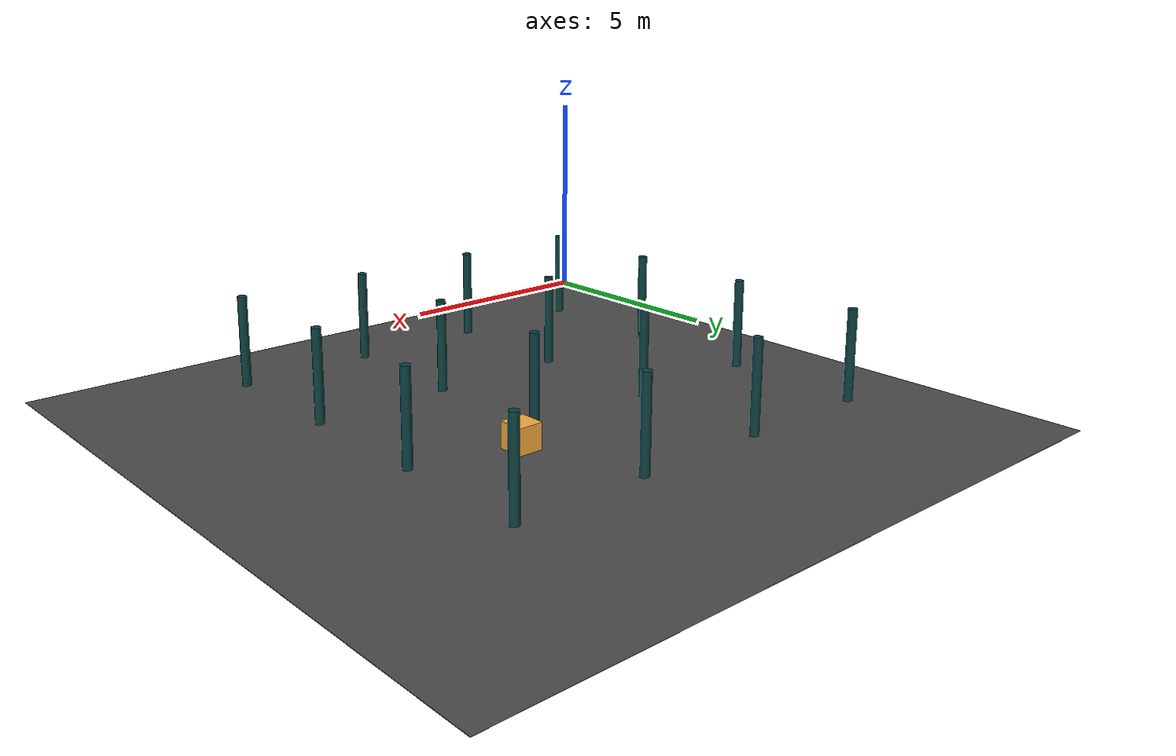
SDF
<sdf version="1.6">
 <world name="default">
  <light name="sun" type="directional">
   <pose>0 0 10 0 -0 0</pose>
   <diffuse>0.8 0.8 0.8 1</diffuse>
   <specular>0.2 0.2 0.2 1</specular>
   <attenuation>
    <range>1000</range>
    <constant>0.9</constant>
    <linear>0.01</linear>
    <quadratic>0.001</quadratic>
   </attenuation>
   <direction>-0.5 0.1 -0.9</direction>
  </light>
  <plugin name="ros_interface_plugin" filename="librotors_gazebo_ros_interface_plugin.so"/>
  <gravity>0 0 -9.8</gravity>
  <magnetic_field>6e-06 2.3e-05 -4.2e-05</magnetic_field>
  <atmosphere type="adiabatic"/>
  <physics name="default_physics" default="0" type="ode">
   <max_step_size>0.001</max_step_size>
   <real_time_factor>1</real_time_factor>
   <real_time_update_rate>1000</real_time_update_rate>
  </physics>
  <scene><ambient>0.95 0.95 0.95 1</ambient><background>1 1 1 1</background><shadows>1</shadows></scene>
  <spherical_coordinates>
   <surface_model>EARTH_WGS84</surface_model>
   <latitude_deg>0</latitude_deg>
   <longitude_deg>0</longitude_deg>
   <elevation>0</elevation>
   <heading_deg>0</heading_deg>
  </spherical_coordinates>
  <model name="env_plane">
   <link name="link">
    <inertial>
     <mass>1</mass>
     <inertia><ixx>1</ixx><ixy>0</ixy><ixz>0</ixz><iyy>1</iyy><iyz>0</iyz><izz>1</izz></inertia>
    </inertial>
    <visual name="visual">
     <cast_shadows>0</cast_shadows>
     <geometry><box><size>15 15 0.01</size></box></geometry>
     <material>
      <script>
       <uri>model://asphalt_plane/materials/scripts</uri>
       <uri>model://asphalt_plane/materials/textures</uri>
       <name>vrc/asphalt</name>
      </script>
      <shader type="pixel"><normal_map>__default__</normal_map></shader>
      <diffuse>0.7 0.7 0.7 1</diffuse>
      <ambient>0.5 0.5 0.5 1</ambient>
      <specular>0.5 0.5 0.5 1</specular>
      <emissive>0.7 0.7 0.7 1</emissive>
     </material>
    </visual>
    <collision name="collision">
     <geometry><box><size>20 20 0.1</size></box></geometry>
     <surface>
      <friction>
       <ode><mu>1</mu><mu2>1</mu2><fdir1>0 0 0</fdir1><slip1>0</slip1><slip2>0</slip2></ode>
       <torsional>
        <coefficient>1</coefficient>
        <patch_radius>0</patch_radius>
        <surface_radius>0</surface_radius>
        <use_patch_radius>1</use_patch_radius>
        <ode><slip>0</slip></ode>
       </torsional>
      </friction>
      <bounce><restitution_coefficient>0</restitution_coefficient><threshold>1e+06</threshold></bounce>
      <contact>
       <collide_without_contact>0</collide_without_contact>
       <collide_without_contact_bitmask>1</collide_without_contact_bitmask>
       <collide_bitmask>1</collide_bitmask>
       <ode>
        <soft_cfm>0</soft_cfm>
        <soft_erp>0.2</soft_erp>
        <kp>1e+13</kp>
        <kd>1</kd>
        <max_vel>0.01</max_vel>
        <min_depth>0</min_depth>
       </ode>
       <bullet>
        <split_impulse>1</split_impulse>
        <split_impulse_penetration_threshold>-0.01</split_impulse_penetration_threshold>
        <soft_cfm>0</soft_cfm>
        <soft_erp>0.2</soft_erp>
        <kp>1e+13</kp>
        <kd>1</kd>
       </bullet>
      </contact>
     </surface>
    </collision>
   </link>
   <static>1</static>
   <pose>7.5 7.5 0 0 -0 0</pose>
  </model>
  <model name="obstacle_clone">
   <link name="link">
    <inertial>
     <mass>112.569</mass>
     <inertia><ixx>33.2512</ixx><ixy>0</ixy><ixz>0</ixz><iyy>33.2512</iyy><iyz>0</iyz><izz>0.537779</izz></inertia>
    </inertial>
    <visual name="visual">
     <geometry><cylinder><radius>0.1</radius><length>2</length></cylinder></geometry>
     <material>
      <script><name>Gazebo/Grey</name><uri>file://media/materials/scripts/gazebo.material</uri></script>
      <shader type="pixel"><normal_map>__default__</normal_map></shader>
      <ambient>0.05 0.25 0.25 1</ambient>
      <diffuse>0.3 0.3 0.3 1</diffuse>
      <specular>0.01 0.01 0.01 1</specular>
      <emissive>0.1 0.1 0.1 1</emissive>
      <lighting>1</lighting>
     </material>
    </visual>
    <collision name="collision">
     <geometry><cylinder><radius>0.097748</radius><length>1.87509</length></cylinder></geometry>
     <surface>
      <friction>
       <ode><mu>1</mu><mu2>1</mu2><fdir1>0 0 0</fdir1><slip1>0</slip1><slip2>0</slip2></ode>
       <torsional>
        <coefficient>1</coefficient>
        <patch_radius>0</patch_radius>
        <surface_radius>0</surface_radius>
        <use_patch_radius>1</use_patch_radius>
        <ode><slip>0</slip></ode>
       </torsional>
      </friction>
      <bounce><restitution_coefficient>0</restitution_coefficient><threshold>1e+06</threshold></bounce>
      <contact>
       <collide_without_contact>0</collide_without_contact>
       <collide_without_contact_bitmask>1</collide_without_contact_bitmask>
       <collide_bitmask>1</collide_bitmask>
       <ode>
        <soft_cfm>0</soft_cfm>
        <soft_erp>0.2</soft_erp>
        <kp>1e+13</kp>
        <kd>1</kd>
        <max_vel>0.01</max_vel>
        <min_depth>0</min_depth>
       </ode>
       <bullet>
        <split_impulse>1</split_impulse>
        <split_impulse_penetration_threshold>-0.01</split_impulse_penetration_threshold>
        <soft_cfm>0</soft_cfm>
        <soft_erp>0.2</soft_erp>
        <kp>1e+13</kp>
        <kd>1</kd>
       </bullet>
      </contact>
     </surface>
    </collision>
   </link>
   <static>0</static>
   <pose>1.99995 2.00002 0.987545 -4.3e-05 -1.6e-05 0.003856</pose>
  </model>
  <model name="obstacle_clone_3">
   <link name="link">
    <inertial>
     <mass>112.569</mass>
     <inertia><ixx>33.2512</ixx><ixy>0</ixy><ixz>0</ixz><iyy>33.2512</iyy><iyz>0</iyz><izz>0.537779</izz></inertia>
    </inertial>
    <visual name="visual">
     <geometry><cylinder><radius>0.1</radius><length>2</length></cylinder></geometry>
     <material>
      <script><name>Gazebo/Grey</name><uri>file://media/materials/scripts/gazebo.material</uri></script>
      <shader type="pixel"><normal_map>__default__</normal_map></shader>
      <ambient>0.05 0.25 0.25 1</ambient>
      <diffuse>0.3 0.3 0.3 1</diffuse>
      <specular>0.01 0.01 0.01 1</specular>
      <emissive>0.1 0.1 0.1 1</emissive>
      <lighting>1</lighting>
     </material>
    </visual>
    <collision name="collision">
     <geometry><cylinder><radius>0.097748</radius><length>1.87509</length></cylinder></geometry>
     <surface>
      <friction>
       <ode><mu>1</mu><mu2>1</mu2><fdir1>0 0 0</fdir1><slip1>0</slip1><slip2>0</slip2></ode>
       <torsional>
        <coefficient>1</coefficient>
        <patch_radius>0</patch_radius>
        <surface_radius>0</surface_radius>
        <use_patch_radius>1</use_patch_radius>
        <ode><slip>0</slip></ode>
       </torsional>
      </friction>
      <bounce><restitution_coefficient>0</restitution_coefficient><threshold>1e+06</threshold></bounce>
      <contact>
       <collide_without_contact>0</collide_without_contact>
       <collide_without_contact_bitmask>1</collide_without_contact_bitmask>
       <collide_bitmask>1</collide_bitmask>
       <ode>
        <soft_cfm>0</soft_cfm>
        <soft_erp>0.2</soft_erp>
        <kp>1e+13</kp>
        <kd>1</kd>
        <max_vel>0.01</max_vel>
        <min_depth>0</min_depth>
       </ode>
       <bullet>
        <split_impulse>1</split_impulse>
        <split_impulse_penetration_threshold>-0.01</split_impulse_penetration_threshold>
        <soft_cfm>0</soft_cfm>
        <soft_erp>0.2</soft_erp>
        <kp>1e+13</kp>
        <kd>1</kd>
       </bullet>
      </contact>
     </surface>
    </collision>
   </link>
   <static>0</static>
   <pose>1.99993 5 0.987545 -2.4e-05 -4.6e-05 0.004362</pose>
  </model>
  <model name="obstacle_clone_6">
   <link name="link">
    <inertial>
     <mass>112.569</mass>
     <inertia><ixx>33.2512</ixx><ixy>0</ixy><ixz>0</ixz><iyy>33.2512</iyy><iyz>0</iyz><izz>0.537779</izz></inertia>
    </inertial>
    <visual name="visual">
     <geometry><cylinder><radius>0.1</radius><length>2</length></cylinder></geometry>
     <material>
      <script><name>Gazebo/Grey</name><uri>file://media/materials/scripts/gazebo.material</uri></script>
      <shader type="pixel"><normal_map>__default__</normal_map></shader>
      <ambient>0.05 0.25 0.25 1</ambient>
      <diffuse>0.3 0.3 0.3 1</diffuse>
      <specular>0.01 0.01 0.01 1</specular>
      <emissive>0.1 0.1 0.1 1</emissive>
      <lighting>1</lighting>
     </material>
    </visual>
    <collision name="collision">
     <geometry><cylinder><radius>0.097748</radius><length>1.87509</length></cylinder></geometry>
     <surface>
      <friction>
       <ode><mu>1</mu><mu2>1</mu2><fdir1>0 0 0</fdir1><slip1>0</slip1><slip2>0</slip2></ode>
       <torsional>
        <coefficient>1</coefficient>
        <patch_radius>0</patch_radius>
        <surface_radius>0</surface_radius>
        <use_patch_radius>1</use_patch_radius>
        <ode><slip>0</slip></ode>
       </torsional>
      </friction>
      <bounce><restitution_coefficient>0</restitution_coefficient><threshold>1e+06</threshold></bounce>
      <contact>
       <collide_without_contact>0</collide_without_contact>
       <collide_without_contact_bitmask>1</collide_without_contact_bitmask>
       <collide_bitmask>1</collide_bitmask>
       <ode>
        <soft_cfm>0</soft_cfm>
        <soft_erp>0.2</soft_erp>
        <kp>1e+13</kp>
        <kd>1</kd>
        <max_vel>0.01</max_vel>
        <min_depth>0</min_depth>
       </ode>
       <bullet>
        <split_impulse>1</split_impulse>
        <split_impulse_penetration_threshold>-0.01</split_impulse_penetration_threshold>
        <soft_cfm>0</soft_cfm>
        <soft_erp>0.2</soft_erp>
        <kp>1e+13</kp>
        <kd>1</kd>
       </bullet>
      </contact>
     </surface>
    </collision>
   </link>
   <static>0</static>
   <pose>5.0004 2.00007 0.987542 -5.9e-05 2.3e-05 0.014893</pose>
  </model>
  <model name="obstacle_clone_8">
   <link name="link">
    <inertial>
     <mass>112.569</mass>
     <inertia><ixx>33.2512</ixx><ixy>0</ixy><ixz>0</ixz><iyy>33.2512</iyy><iyz>0</iyz><izz>0.537779</izz></inertia>
    </inertial>
    <visual name="visual">
     <geometry><cylinder><radius>0.1</radius><length>2</length></cylinder></geometry>
     <material>
      <script><name>Gazebo/Grey</name><uri>file://media/materials/scripts/gazebo.material</uri></script>
      <shader type="pixel"><normal_map>__default__</normal_map></shader>
      <ambient>0.05 0.25 0.25 1</ambient>
      <diffuse>0.3 0.3 0.3 1</diffuse>
      <specular>0.01 0.01 0.01 1</specular>
      <emissive>0.1 0.1 0.1 1</emissive>
      <lighting>1</lighting>
     </material>
    </visual>
    <collision name="collision">
     <geometry><cylinder><radius>0.097748</radius><length>1.87509</length></cylinder></geometry>
     <surface>
      <friction>
       <ode><mu>1</mu><mu2>1</mu2><fdir1>0 0 0</fdir1><slip1>0</slip1><slip2>0</slip2></ode>
       <torsional>
        <coefficient>1</coefficient>
        <patch_radius>0</patch_radius>
        <surface_radius>0</surface_radius>
        <use_patch_radius>1</use_patch_radius>
        <ode><slip>0</slip></ode>
       </torsional>
      </friction>
      <bounce><restitution_coefficient>0</restitution_coefficient><threshold>1e+06</threshold></bounce>
      <contact>
       <collide_without_contact>0</collide_without_contact>
       <collide_without_contact_bitmask>1</collide_without_contact_bitmask>
       <collide_bitmask>1</collide_bitmask>
       <ode>
        <soft_cfm>0</soft_cfm>
        <soft_erp>0.2</soft_erp>
        <kp>1e+13</kp>
        <kd>1</kd>
        <max_vel>0.01</max_vel>
        <min_depth>0</min_depth>
       </ode>
       <bullet>
        <split_impulse>1</split_impulse>
        <split_impulse_penetration_threshold>-0.01</split_impulse_penetration_threshold>
        <soft_cfm>0</soft_cfm>
        <soft_erp>0.2</soft_erp>
        <kp>1e+13</kp>
        <kd>1</kd>
       </bullet>
      </contact>
     </surface>
    </collision>
   </link>
   <static>0</static>
   <pose>5.00031 5.00005 0.987551 -5.9e-05 2.7e-05 0.014829</pose>
  </model>
  <model name="obstacle_clone_10">
   <link name="link">
    <inertial>
     <mass>112.569</mass>
     <inertia><ixx>33.2512</ixx><ixy>0</ixy><ixz>0</ixz><iyy>33.2512</iyy><iyz>0</iyz><izz>0.537779</izz></inertia>
    </inertial>
    <visual name="visual">
     <geometry><cylinder><radius>0.1</radius><length>2</length></cylinder></geometry>
     <material>
      <script><name>Gazebo/Grey</name><uri>file://media/materials/scripts/gazebo.material</uri></script>
      <shader type="pixel"><normal_map>__default__</normal_map></shader>
      <ambient>0.05 0.25 0.25 1</ambient>
      <diffuse>0.3 0.3 0.3 1</diffuse>
      <specular>0.01 0.01 0.01 1</specular>
      <emissive>0.1 0.1 0.1 1</emissive>
      <lighting>1</lighting>
     </material>
    </visual>
    <collision name="collision">
     <geometry><cylinder><radius>0.097748</radius><length>1.87509</length></cylinder></geometry>
     <surface>
      <friction>
       <ode><mu>1</mu><mu2>1</mu2><fdir1>0 0 0</fdir1><slip1>0</slip1><slip2>0</slip2></ode>
       <torsional>
        <coefficient>1</coefficient>
        <patch_radius>0</patch_radius>
        <surface_radius>0</surface_radius>
        <use_patch_radius>1</use_patch_radius>
        <ode><slip>0</slip></ode>
       </torsional>
      </friction>
      <bounce><restitution_coefficient>0</restitution_coefficient><threshold>1e+06</threshold></bounce>
      <contact>
       <collide_without_contact>0</collide_without_contact>
       <collide_without_contact_bitmask>1</collide_without_contact_bitmask>
       <collide_bitmask>1</collide_bitmask>
       <ode>
        <soft_cfm>0</soft_cfm>
        <soft_erp>0.2</soft_erp>
        <kp>1e+13</kp>
        <kd>1</kd>
        <max_vel>0.01</max_vel>
        <min_depth>0</min_depth>
       </ode>
       <bullet>
        <split_impulse>1</split_impulse>
        <split_impulse_penetration_threshold>-0.01</split_impulse_penetration_threshold>
        <soft_cfm>0</soft_cfm>
        <soft_erp>0.2</soft_erp>
        <kp>1e+13</kp>
        <kd>1</kd>
       </bullet>
      </contact>
     </surface>
    </collision>
   </link>
   <static>0</static>
   <pose>8.0003 5.00005 0.987542 -6.1e-05 2.5e-05 0.012231</pose>
  </model>
  <model name="obstacle_clone_11">
   <link name="link">
    <inertial>
     <mass>112.569</mass>
     <inertia><ixx>33.2512</ixx><ixy>0</ixy><ixz>0</ixz><iyy>33.2512</iyy><iyz>0</iyz><izz>0.537779</izz></inertia>
    </inertial>
    <visual name="visual">
     <geometry><cylinder><radius>0.1</radius><length>2</length></cylinder></geometry>
     <material>
      <script><name>Gazebo/Grey</name><uri>file://media/materials/scripts/gazebo.material</uri></script>
      <shader type="pixel"><normal_map>__default__</normal_map></shader>
      <ambient>0.05 0.25 0.25 1</ambient>
      <diffuse>0.3 0.3 0.3 1</diffuse>
      <specular>0.01 0.01 0.01 1</specular>
      <emissive>0.1 0.1 0.1 1</emissive>
      <lighting>1</lighting>
     </material>
    </visual>
    <collision name="collision">
     <geometry><cylinder><radius>0.097748</radius><length>1.87509</length></cylinder></geometry>
     <surface>
      <friction>
       <ode><mu>1</mu><mu2>1</mu2><fdir1>0 0 0</fdir1><slip1>0</slip1><slip2>0</slip2></ode>
       <torsional>
        <coefficient>1</coefficient>
        <patch_radius>0</patch_radius>
        <surface_radius>0</surface_radius>
        <use_patch_radius>1</use_patch_radius>
        <ode><slip>0</slip></ode>
       </torsional>
      </friction>
      <bounce><restitution_coefficient>0</restitution_coefficient><threshold>1e+06</threshold></bounce>
      <contact>
       <collide_without_contact>0</collide_without_contact>
       <collide_without_contact_bitmask>1</collide_without_contact_bitmask>
       <collide_bitmask>1</collide_bitmask>
       <ode>
        <soft_cfm>0</soft_cfm>
        <soft_erp>0.2</soft_erp>
        <kp>1e+13</kp>
        <kd>1</kd>
        <max_vel>0.01</max_vel>
        <min_depth>0</min_depth>
       </ode>
       <bullet>
        <split_impulse>1</split_impulse>
        <split_impulse_penetration_threshold>-0.01</split_impulse_penetration_threshold>
        <soft_cfm>0</soft_cfm>
        <soft_erp>0.2</soft_erp>
        <kp>1e+13</kp>
        <kd>1</kd>
       </bullet>
      </contact>
     </surface>
    </collision>
   </link>
   <static>0</static>
   <pose>8.00067 8.00009 0.987551 -5.5e-05 2.7e-05 0.015514</pose>
  </model>
  <model name="obstacle_clone_16">
   <link name="link">
    <inertial>
     <mass>112.569</mass>
     <inertia><ixx>33.2512</ixx><ixy>0</ixy><ixz>0</ixz><iyy>33.2512</iyy><iyz>0</iyz><izz>0.537779</izz></inertia>
    </inertial>
    <visual name="visual">
     <geometry><cylinder><radius>0.1</radius><length>2</length></cylinder></geometry>
     <material>
      <script><name>Gazebo/Grey</name><uri>file://media/materials/scripts/gazebo.material</uri></script>
      <shader type="pixel"><normal_map>__default__</normal_map></shader>
      <ambient>0.05 0.25 0.25 1</ambient>
      <diffuse>0.3 0.3 0.3 1</diffuse>
      <specular>0.01 0.01 0.01 1</specular>
      <emissive>0.1 0.1 0.1 1</emissive>
      <lighting>1</lighting>
     </material>
    </visual>
    <collision name="collision">
     <geometry><cylinder><radius>0.097748</radius><length>1.87509</length></cylinder></geometry>
     <surface>
      <friction>
       <ode><mu>1</mu><mu2>1</mu2><fdir1>0 0 0</fdir1><slip1>0</slip1><slip2>0</slip2></ode>
       <torsional>
        <coefficient>1</coefficient>
        <patch_radius>0</patch_radius>
        <surface_radius>0</surface_radius>
        <use_patch_radius>1</use_patch_radius>
        <ode><slip>0</slip></ode>
       </torsional>
      </friction>
      <bounce><restitution_coefficient>0</restitution_coefficient><threshold>1e+06</threshold></bounce>
      <contact>
       <collide_without_contact>0</collide_without_contact>
       <collide_without_contact_bitmask>1</collide_without_contact_bitmask>
       <collide_bitmask>1</collide_bitmask>
       <ode>
        <soft_cfm>0</soft_cfm>
        <soft_erp>0.2</soft_erp>
        <kp>1e+13</kp>
        <kd>1</kd>
        <max_vel>0.01</max_vel>
        <min_depth>0</min_depth>
       </ode>
       <bullet>
        <split_impulse>1</split_impulse>
        <split_impulse_penetration_threshold>-0.01</split_impulse_penetration_threshold>
        <soft_cfm>0</soft_cfm>
        <soft_erp>0.2</soft_erp>
        <kp>1e+13</kp>
        <kd>1</kd>
       </bullet>
      </contact>
     </surface>
    </collision>
   </link>
   <static>0</static>
   <pose>2.00037 8.00018 0.98754 -4.7e-05 2.5e-05 0.012137</pose>
  </model>
  <model name="obstacle_clone_21">
   <link name="link">
    <inertial>
     <mass>112.569</mass>
     <inertia><ixx>33.2512</ixx><ixy>0</ixy><ixz>0</ixz><iyy>33.2512</iyy><iyz>0</iyz><izz>0.537779</izz></inertia>
    </inertial>
    <visual name="visual">
     <geometry><cylinder><radius>0.1</radius><length>2</length></cylinder></geometry>
     <material>
      <script><name>Gazebo/Grey</name><uri>file://media/materials/scripts/gazebo.material</uri></script>
      <shader type="pixel"><normal_map>__default__</normal_map></shader>
      <ambient>0.05 0.25 0.25 1</ambient>
      <diffuse>0.3 0.3 0.3 1</diffuse>
      <specular>0.01 0.01 0.01 1</specular>
      <emissive>0.1 0.1 0.1 1</emissive>
      <lighting>1</lighting>
     </material>
    </visual>
    <collision name="collision">
     <geometry><cylinder><radius>0.097748</radius><length>1.87509</length></cylinder></geometry>
     <surface>
      <friction>
       <ode><mu>1</mu><mu2>1</mu2><fdir1>0 0 0</fdir1><slip1>0</slip1><slip2>0</slip2></ode>
       <torsional>
        <coefficient>1</coefficient>
        <patch_radius>0</patch_radius>
        <surface_radius>0</surface_radius>
        <use_patch_radius>1</use_patch_radius>
        <ode><slip>0</slip></ode>
       </torsional>
      </friction>
      <bounce><restitution_coefficient>0</restitution_coefficient><threshold>1e+06</threshold></bounce>
      <contact>
       <collide_without_contact>0</collide_without_contact>
       <collide_without_contact_bitmask>1</collide_without_contact_bitmask>
       <collide_bitmask>1</collide_bitmask>
       <ode>
        <soft_cfm>0</soft_cfm>
        <soft_erp>0.2</soft_erp>
        <kp>1e+13</kp>
        <kd>1</kd>
        <max_vel>0.01</max_vel>
        <min_depth>0</min_depth>
       </ode>
       <bullet>
        <split_impulse>1</split_impulse>
        <split_impulse_penetration_threshold>-0.01</split_impulse_penetration_threshold>
        <soft_cfm>0</soft_cfm>
        <soft_erp>0.2</soft_erp>
        <kp>1e+13</kp>
        <kd>1</kd>
       </bullet>
      </contact>
     </surface>
    </collision>
   </link>
   <static>0</static>
   <pose>5.00054 8.00009 0.987551 -6.1e-05 2.7e-05 0.014596</pose>
  </model>
  <model name="obstacle_clone_23">
   <link name="link">
    <inertial>
     <mass>112.569</mass>
     <inertia><ixx>33.2512</ixx><ixy>0</ixy><ixz>0</ixz><iyy>33.2512</iyy><iyz>0</iyz><izz>0.537779</izz></inertia>
    </inertial>
    <visual name="visual">
     <geometry><cylinder><radius>0.1</radius><length>2</length></cylinder></geometry>
     <material>
      <script><name>Gazebo/Grey</name><uri>file://media/materials/scripts/gazebo.material</uri></script>
      <shader type="pixel"><normal_map>__default__</normal_map></shader>
      <ambient>0.05 0.25 0.25 1</ambient>
      <diffuse>0.3 0.3 0.3 1</diffuse>
      <specular>0.01 0.01 0.01 1</specular>
      <emissive>0.1 0.1 0.1 1</emissive>
      <lighting>1</lighting>
     </material>
    </visual>
    <collision name="collision">
     <geometry><cylinder><radius>0.097748</radius><length>1.87509</length></cylinder></geometry>
     <surface>
      <friction>
       <ode><mu>1</mu><mu2>1</mu2><fdir1>0 0 0</fdir1><slip1>0</slip1><slip2>0</slip2></ode>
       <torsional>
        <coefficient>1</coefficient>
        <patch_radius>0</patch_radius>
        <surface_radius>0</surface_radius>
        <use_patch_radius>1</use_patch_radius>
        <ode><slip>0</slip></ode>
       </torsional>
      </friction>
      <bounce><restitution_coefficient>0</restitution_coefficient><threshold>1e+06</threshold></bounce>
      <contact>
       <collide_without_contact>0</collide_without_contact>
       <collide_without_contact_bitmask>1</collide_without_contact_bitmask>
       <collide_bitmask>1</collide_bitmask>
       <ode>
        <soft_cfm>0</soft_cfm>
        <soft_erp>0.2</soft_erp>
        <kp>1e+13</kp>
        <kd>1</kd>
        <max_vel>0.01</max_vel>
        <min_depth>0</min_depth>
       </ode>
       <bullet>
        <split_impulse>1</split_impulse>
        <split_impulse_penetration_threshold>-0.01</split_impulse_penetration_threshold>
        <soft_cfm>0</soft_cfm>
        <soft_erp>0.2</soft_erp>
        <kp>1e+13</kp>
        <kd>1</kd>
       </bullet>
      </contact>
     </surface>
    </collision>
   </link>
   <static>0</static>
   <pose>8.0004 2.00006 0.987542 -6.1e-05 2.9e-05 0.014747</pose>
  </model>
  <model name="obstacle_clone_27">
   <link name="link">
    <inertial>
     <mass>112.569</mass>
     <inertia><ixx>33.2512</ixx><ixy>0</ixy><ixz>0</ixz><iyy>33.2512</iyy><iyz>0</iyz><izz>0.537779</izz></inertia>
    </inertial>
    <visual name="visual">
     <geometry><cylinder><radius>0.1</radius><length>2</length></cylinder></geometry>
     <material>
      <script><name>Gazebo/Grey</name><uri>file://media/materials/scripts/gazebo.material</uri></script>
      <shader type="pixel"><normal_map>__default__</normal_map></shader>
      <ambient>0.05 0.25 0.25 1</ambient>
      <diffuse>0.3 0.3 0.3 1</diffuse>
      <specular>0.01 0.01 0.01 1</specular>
      <emissive>0.1 0.1 0.1 1</emissive>
      <lighting>1</lighting>
     </material>
    </visual>
    <collision name="collision">
     <geometry><cylinder><radius>0.097748</radius><length>1.87509</length></cylinder></geometry>
     <surface>
      <friction>
       <ode><mu>1</mu><mu2>1</mu2><fdir1>0 0 0</fdir1><slip1>0</slip1><slip2>0</slip2></ode>
       <torsional>
        <coefficient>1</coefficient>
        <patch_radius>0</patch_radius>
        <surface_radius>0</surface_radius>
        <use_patch_radius>1</use_patch_radius>
        <ode><slip>0</slip></ode>
       </torsional>
      </friction>
      <bounce><restitution_coefficient>0</restitution_coefficient><threshold>1e+06</threshold></bounce>
      <contact>
       <collide_without_contact>0</collide_without_contact>
       <collide_without_contact_bitmask>1</collide_without_contact_bitmask>
       <collide_bitmask>1</collide_bitmask>
       <ode>
        <soft_cfm>0</soft_cfm>
        <soft_erp>0.2</soft_erp>
        <kp>1e+13</kp>
        <kd>1</kd>
        <max_vel>0.01</max_vel>
        <min_depth>0</min_depth>
       </ode>
       <bullet>
        <split_impulse>1</split_impulse>
        <split_impulse_penetration_threshold>-0.01</split_impulse_penetration_threshold>
        <soft_cfm>0</soft_cfm>
        <soft_erp>0.2</soft_erp>
        <kp>1e+13</kp>
        <kd>1</kd>
       </bullet>
      </contact>
     </surface>
    </collision>
   </link>
   <static>0</static>
   <pose>11 7.99999 0.987543 -3e-05 1.4e-05 0.007326</pose>
  </model>
  <model name="obstacle_clone_29">
   <link name="link">
    <inertial>
     <mass>112.569</mass>
     <inertia><ixx>33.2512</ixx><ixy>0</ixy><ixz>0</ixz><iyy>33.2512</iyy><iyz>0</iyz><izz>0.537779</izz></inertia>
    </inertial>
    <visual name="visual">
     <geometry><cylinder><radius>0.1</radius><length>2</length></cylinder></geometry>
     <material>
      <script><name>Gazebo/Grey</name><uri>file://media/materials/scripts/gazebo.material</uri></script>
      <shader type="pixel"><normal_map>__default__</normal_map></shader>
      <ambient>0.05 0.25 0.25 1</ambient>
      <diffuse>0.3 0.3 0.3 1</diffuse>
      <specular>0.01 0.01 0.01 1</specular>
      <emissive>0.1 0.1 0.1 1</emissive>
      <lighting>1</lighting>
     </material>
    </visual>
    <collision name="collision">
     <geometry><cylinder><radius>0.097748</radius><length>1.87509</length></cylinder></geometry>
     <surface>
      <friction>
       <ode><mu>1</mu><mu2>1</mu2><fdir1>0 0 0</fdir1><slip1>0</slip1><slip2>0</slip2></ode>
       <torsional>
        <coefficient>1</coefficient>
        <patch_radius>0</patch_radius>
        <surface_radius>0</surface_radius>
        <use_patch_radius>1</use_patch_radius>
        <ode><slip>0</slip></ode>
       </torsional>
      </friction>
      <bounce><restitution_coefficient>0</restitution_coefficient><threshold>1e+06</threshold></bounce>
      <contact>
       <collide_without_contact>0</collide_without_contact>
       <collide_without_contact_bitmask>1</collide_without_contact_bitmask>
       <collide_bitmask>1</collide_bitmask>
       <ode>
        <soft_cfm>0</soft_cfm>
        <soft_erp>0.2</soft_erp>
        <kp>1e+13</kp>
        <kd>1</kd>
        <max_vel>0.01</max_vel>
        <min_depth>0</min_depth>
       </ode>
       <bullet>
        <split_impulse>1</split_impulse>
        <split_impulse_penetration_threshold>-0.01</split_impulse_penetration_threshold>
        <soft_cfm>0</soft_cfm>
        <soft_erp>0.2</soft_erp>
        <kp>1e+13</kp>
        <kd>1</kd>
       </bullet>
      </contact>
     </surface>
    </collision>
   </link>
   <static>0</static>
   <pose>11.0003 2.00007 0.987542 -6.2e-05 2.7e-05 0.014387</pose>
  </model>
  <model name="obstacle_clone_30">
   <link name="link">
    <inertial>
     <mass>112.569</mass>
     <inertia><ixx>33.2512</ixx><ixy>0</ixy><ixz>0</ixz><iyy>33.2512</iyy><iyz>0</iyz><izz>0.537779</izz></inertia>
    </inertial>
    <visual name="visual">
     <geometry><cylinder><radius>0.1</radius><length>2</length></cylinder></geometry>
     <material>
      <script><name>Gazebo/Grey</name><uri>file://media/materials/scripts/gazebo.material</uri></script>
      <shader type="pixel"><normal_map>__default__</normal_map></shader>
      <ambient>0.05 0.25 0.25 1</ambient>
      <diffuse>0.3 0.3 0.3 1</diffuse>
      <specular>0.01 0.01 0.01 1</specular>
      <emissive>0.1 0.1 0.1 1</emissive>
      <lighting>1</lighting>
     </material>
    </visual>
    <collision name="collision">
     <geometry><cylinder><radius>0.097748</radius><length>1.87509</length></cylinder></geometry>
     <surface>
      <friction>
       <ode><mu>1</mu><mu2>1</mu2><fdir1>0 0 0</fdir1><slip1>0</slip1><slip2>0</slip2></ode>
       <torsional>
        <coefficient>1</coefficient>
        <patch_radius>0</patch_radius>
        <surface_radius>0</surface_radius>
        <use_patch_radius>1</use_patch_radius>
        <ode><slip>0</slip></ode>
       </torsional>
      </friction>
      <bounce><restitution_coefficient>0</restitution_coefficient><threshold>1e+06</threshold></bounce>
      <contact>
       <collide_without_contact>0</collide_without_contact>
       <collide_without_contact_bitmask>1</collide_without_contact_bitmask>
       <collide_bitmask>1</collide_bitmask>
       <ode>
        <soft_cfm>0</soft_cfm>
        <soft_erp>0.2</soft_erp>
        <kp>1e+13</kp>
        <kd>1</kd>
        <max_vel>0.01</max_vel>
        <min_depth>0</min_depth>
       </ode>
       <bullet>
        <split_impulse>1</split_impulse>
        <split_impulse_penetration_threshold>-0.01</split_impulse_penetration_threshold>
        <soft_cfm>0</soft_cfm>
        <soft_erp>0.2</soft_erp>
        <kp>1e+13</kp>
        <kd>1</kd>
       </bullet>
      </contact>
     </surface>
    </collision>
   </link>
   <static>0</static>
   <pose>11.0004 5.00007 0.987541 -5.7e-05 2.4e-05 0.01429</pose>
  </model>
  <model name="obstacle_clone_clone">
   <link name="link">
    <inertial>
     <mass>112.569</mass>
     <inertia><ixx>33.2512</ixx><ixy>0</ixy><ixz>0</ixz><iyy>33.2512</iyy><iyz>0</iyz><izz>0.537779</izz></inertia>
    </inertial>
    <visual name="visual">
     <geometry><cylinder><radius>0.1</radius><length>2</length></cylinder></geometry>
     <material>
      <script><name>Gazebo/Grey</name><uri>file://media/materials/scripts/gazebo.material</uri></script>
      <shader type="pixel"><normal_map>__default__</normal_map></shader>
      <ambient>0.05 0.25 0.25 1</ambient>
      <diffuse>0.3 0.3 0.3 1</diffuse>
      <specular>0.01 0.01 0.01 1</specular>
      <emissive>0.1 0.1 0.1 1</emissive>
      <lighting>1</lighting>
     </material>
    </visual>
    <collision name="collision">
     <geometry><cylinder><radius>0.097748</radius><length>1.87509</length></cylinder></geometry>
     <surface>
      <friction>
       <ode><mu>1</mu><mu2>1</mu2><fdir1>0 0 0</fdir1><slip1>0</slip1><slip2>0</slip2></ode>
       <torsional>
        <coefficient>1</coefficient>
        <patch_radius>0</patch_radius>
        <surface_radius>0</surface_radius>
        <use_patch_radius>1</use_patch_radius>
        <ode><slip>0</slip></ode>
       </torsional>
      </friction>
      <bounce><restitution_coefficient>0</restitution_coefficient><threshold>1e+06</threshold></bounce>
      <contact>
       <collide_without_contact>0</collide_without_contact>
       <collide_without_contact_bitmask>1</collide_without_contact_bitmask>
       <collide_bitmask>1</collide_bitmask>
       <ode>
        <soft_cfm>0</soft_cfm>
        <soft_erp>0.2</soft_erp>
        <kp>1e+13</kp>
        <kd>1</kd>
        <max_vel>0.01</max_vel>
        <min_depth>0</min_depth>
       </ode>
       <bullet>
        <split_impulse>1</split_impulse>
        <split_impulse_penetration_threshold>-0.01</split_impulse_penetration_threshold>
        <soft_cfm>0</soft_cfm>
        <soft_erp>0.2</soft_erp>
        <kp>1e+13</kp>
        <kd>1</kd>
       </bullet>
      </contact>
     </surface>
    </collision>
   </link>
   <static>0</static>
   <pose>2.00004 11 0.98755 -5.4e-05 2.6e-05 0.004352</pose>
  </model>
  <model name="obstacle_clone_clone_0">
   <link name="link">
    <inertial>
     <mass>112.569</mass>
     <inertia><ixx>33.2512</ixx><ixy>0</ixy><ixz>0</ixz><iyy>33.2512</iyy><iyz>0</iyz><izz>0.537779</izz></inertia>
    </inertial>
    <visual name="visual">
     <geometry><cylinder><radius>0.1</radius><length>2</length></cylinder></geometry>
     <material>
      <script><name>Gazebo/Grey</name><uri>file://media/materials/scripts/gazebo.material</uri></script>
      <shader type="pixel"><normal_map>__default__</normal_map></shader>
      <ambient>0.05 0.25 0.25 1</ambient>
      <diffuse>0.3 0.3 0.3 1</diffuse>
      <specular>0.01 0.01 0.01 1</specular>
      <emissive>0.1 0.1 0.1 1</emissive>
      <lighting>1</lighting>
     </material>
    </visual>
    <collision name="collision">
     <geometry><cylinder><radius>0.097748</radius><length>1.87509</length></cylinder></geometry>
     <surface>
      <friction>
       <ode><mu>1</mu><mu2>1</mu2><fdir1>0 0 0</fdir1><slip1>0</slip1><slip2>0</slip2></ode>
       <torsional>
        <coefficient>1</coefficient>
        <patch_radius>0</patch_radius>
        <surface_radius>0</surface_radius>
        <use_patch_radius>1</use_patch_radius>
        <ode><slip>0</slip></ode>
       </torsional>
      </friction>
      <bounce><restitution_coefficient>0</restitution_coefficient><threshold>1e+06</threshold></bounce>
      <contact>
       <collide_without_contact>0</collide_without_contact>
       <collide_without_contact_bitmask>1</collide_without_contact_bitmask>
       <collide_bitmask>1</collide_bitmask>
       <ode>
        <soft_cfm>0</soft_cfm>
        <soft_erp>0.2</soft_erp>
        <kp>1e+13</kp>
        <kd>1</kd>
        <max_vel>0.01</max_vel>
        <min_depth>0</min_depth>
       </ode>
       <bullet>
        <split_impulse>1</split_impulse>
        <split_impulse_penetration_threshold>-0.01</split_impulse_penetration_threshold>
        <soft_cfm>0</soft_cfm>
        <soft_erp>0.2</soft_erp>
        <kp>1e+13</kp>
        <kd>1</kd>
       </bullet>
      </contact>
     </surface>
    </collision>
   </link>
   <static>0</static>
   <pose>5.00005 11 0.987541 -4.9e-05 2.1e-05 0.004618</pose>
  </model>
  <model name="obstacle_clone_clone_1">
   <link name="link">
    <inertial>
     <mass>112.569</mass>
     <inertia><ixx>33.2512</ixx><ixy>0</ixy><ixz>0</ixz><iyy>33.2512</iyy><iyz>0</iyz><izz>0.537779</izz></inertia>
    </inertial>
    <visual name="visual">
     <geometry><cylinder><radius>0.1</radius><length>2</length></cylinder></geometry>
     <material>
      <script><name>Gazebo/Grey</name><uri>file://media/materials/scripts/gazebo.material</uri></script>
      <shader type="pixel"><normal_map>__default__</normal_map></shader>
      <ambient>0.05 0.25 0.25 1</ambient>
      <diffuse>0.3 0.3 0.3 1</diffuse>
      <specular>0.01 0.01 0.01 1</specular>
      <emissive>0.1 0.1 0.1 1</emissive>
      <lighting>1</lighting>
     </material>
    </visual>
    <collision name="collision">
     <geometry><cylinder><radius>0.097748</radius><length>1.87509</length></cylinder></geometry>
     <surface>
      <friction>
       <ode><mu>1</mu><mu2>1</mu2><fdir1>0 0 0</fdir1><slip1>0</slip1><slip2>0</slip2></ode>
       <torsional>
        <coefficient>1</coefficient>
        <patch_radius>0</patch_radius>
        <surface_radius>0</surface_radius>
        <use_patch_radius>1</use_patch_radius>
        <ode><slip>0</slip></ode>
       </torsional>
      </friction>
      <bounce><restitution_coefficient>0</restitution_coefficient><threshold>1e+06</threshold></bounce>
      <contact>
       <collide_without_contact>0</collide_without_contact>
       <collide_without_contact_bitmask>1</collide_without_contact_bitmask>
       <collide_bitmask>1</collide_bitmask>
       <ode>
        <soft_cfm>0</soft_cfm>
        <soft_erp>0.2</soft_erp>
        <kp>1e+13</kp>
        <kd>1</kd>
        <max_vel>0.01</max_vel>
        <min_depth>0</min_depth>
       </ode>
       <bullet>
        <split_impulse>1</split_impulse>
        <split_impulse_penetration_threshold>-0.01</split_impulse_penetration_threshold>
        <soft_cfm>0</soft_cfm>
        <soft_erp>0.2</soft_erp>
        <kp>1e+13</kp>
        <kd>1</kd>
       </bullet>
      </contact>
     </surface>
    </collision>
   </link>
   <static>0</static>
   <pose>8.00005 11 0.987542 -6e-05 2.5e-05 0.004634</pose>
  </model>
  <model name="obstacle_clone_clone_2">
   <link name="link">
    <inertial>
     <mass>112.569</mass>
     <inertia><ixx>33.2512</ixx><ixy>0</ixy><ixz>0</ixz><iyy>33.2512</iyy><iyz>0</iyz><izz>0.537779</izz></inertia>
    </inertial>
    <visual name="visual">
     <geometry><cylinder><radius>0.1</radius><length>2</length></cylinder></geometry>
     <material>
      <script><name>Gazebo/Grey</name><uri>file://media/materials/scripts/gazebo.material</uri></script>
      <shader type="pixel"><normal_map>__default__</normal_map></shader>
      <ambient>0.05 0.25 0.25 1</ambient>
      <diffuse>0.3 0.3 0.3 1</diffuse>
      <specular>0.01 0.01 0.01 1</specular>
      <emissive>0.1 0.1 0.1 1</emissive>
      <lighting>1</lighting>
     </material>
    </visual>
    <collision name="collision">
     <geometry><cylinder><radius>0.097748</radius><length>1.87509</length></cylinder></geometry>
     <surface>
      <friction>
       <ode><mu>1</mu><mu2>1</mu2><fdir1>0 0 0</fdir1><slip1>0</slip1><slip2>0</slip2></ode>
       <torsional>
        <coefficient>1</coefficient>
        <patch_radius>0</patch_radius>
        <surface_radius>0</surface_radius>
        <use_patch_radius>1</use_patch_radius>
        <ode><slip>0</slip></ode>
       </torsional>
      </friction>
      <bounce><restitution_coefficient>0</restitution_coefficient><threshold>1e+06</threshold></bounce>
      <contact>
       <collide_without_contact>0</collide_without_contact>
       <collide_without_contact_bitmask>1</collide_without_contact_bitmask>
       <collide_bitmask>1</collide_bitmask>
       <ode>
        <soft_cfm>0</soft_cfm>
        <soft_erp>0.2</soft_erp>
        <kp>1e+13</kp>
        <kd>1</kd>
        <max_vel>0.01</max_vel>
        <min_depth>0</min_depth>
       </ode>
       <bullet>
        <split_impulse>1</split_impulse>
        <split_impulse_penetration_threshold>-0.01</split_impulse_penetration_threshold>
        <soft_cfm>0</soft_cfm>
        <soft_erp>0.2</soft_erp>
        <kp>1e+13</kp>
        <kd>1</kd>
       </bullet>
      </contact>
     </surface>
    </collision>
   </link>
   <static>0</static>
   <pose>11 11 0.987544 -3e-05 1.2e-05 0.003885</pose>
  </model>
  <model name="destination">
   <link name="link">
    <inertial>
     <mass>0.0182097</mass>
     <inertia>
      <ixx>2.41e-05</ixx>
      <ixy>0</ixy>
      <ixz>0</ixz>
      <iyy>1.97e-05</iyy>
      <iyz>0</iyz>
      <izz>2.207e-05</izz>
     </inertia>
    </inertial>
    <gravity>0</gravity>
    <visual name="visual">
     <geometry><box><size>0.5 0.5 0.5</size></box></geometry>
     <material>
      <script><name>Gazebo/Grey</name><uri>file://media/materials/scripts/gazebo.material</uri></script>
      <shader type="pixel"><normal_map>__default__</normal_map></shader>
      <ambient>0.988 0.686 0.243 1</ambient>
      <diffuse>0.988 0.686 0.243 1</diffuse>
      <specular>0.988 0.686 0.243 1</specular>
      <emissive>0.988 0.686 0.243 1</emissive>
     </material>
    </visual>
    <collision name="collision">
     <geometry><box><size>0.5 0.5 0.5</size></box></geometry>
     <surface>
      <friction>
       <ode><mu>1</mu><mu2>1</mu2><fdir1>0 0 0</fdir1><slip1>0</slip1><slip2>0</slip2></ode>
       <torsional>
        <coefficient>1</coefficient>
        <patch_radius>0</patch_radius>
        <surface_radius>0</surface_radius>
        <use_patch_radius>1</use_patch_radius>
        <ode><slip>0</slip></ode>
       </torsional>
      </friction>
      <bounce><restitution_coefficient>0</restitution_coefficient><threshold>1e+06</threshold></bounce>
      <contact>
       <collide_without_contact>1</collide_without_contact>
       <collide_without_contact_bitmask>1</collide_without_contact_bitmask>
       <collide_bitmask>1</collide_bitmask>
       <ode>
        <soft_cfm>0</soft_cfm>
        <soft_erp>0.2</soft_erp>
        <kp>1e+13</kp>
        <kd>1</kd>
        <max_vel>0.01</max_vel>
        <min_depth>0</min_depth>
       </ode>
       <bullet>
        <split_impulse>1</split_impulse>
        <split_impulse_penetration_threshold>-0.01</split_impulse_penetration_threshold>
        <soft_cfm>0</soft_cfm>
        <soft_erp>0.2</soft_erp>
        <kp>1e+13</kp>
        <kd>1</kd>
       </bullet>
      </contact>
     </surface>
    </collision>
   </link>
   <static>0</static>
   <pose>10 10 1 0 -0 0</pose>
  </model>
 </world>
</sdf>
